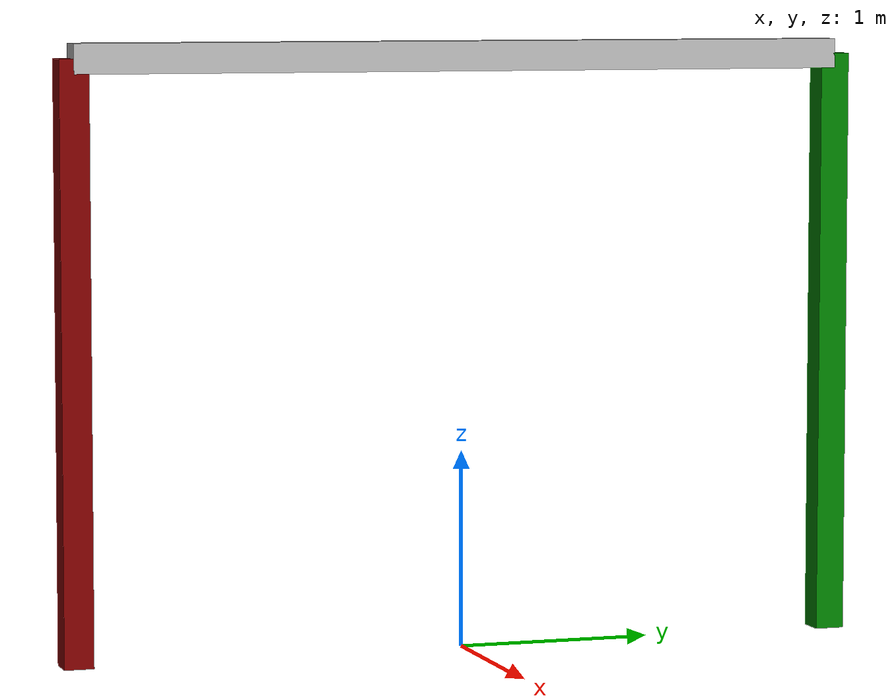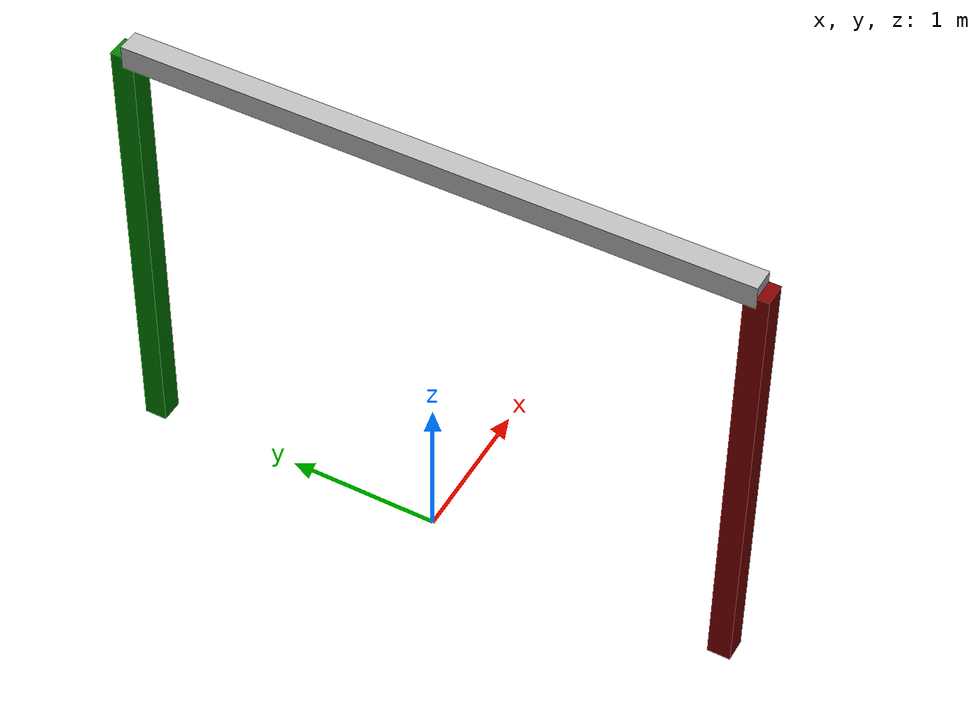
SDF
<?xml version='1.0'?>
<sdf version="1.4">
  <model name="structure">
    <pose>0 0 0 0 0 0</pose>
    <static>true</static>

    <link name="main_base">
      <pose>0 0 3   0 0 0</pose>
      <inertial>
        <mass>1.0</mass>
        <inertia> <!-- inertias are tricky to compute -->
          <!-- http://gazebosim.org/tutorials?tut=inertia&cat=build_robot -->
          <ixx>100</ixx>       <!-- for a box: ixx = 0.083 * mass * (y*y + z*z) -->
          <ixy>0.0</ixy>         <!-- for a box: ixy = 0 -->
          <ixz>0.0</ixz>         <!-- for a box: ixz = 0 -->
          <iyy>100</iyy>       <!-- for a box: iyy = 0.083 * mass * (x*x + z*z) -->
          <iyz>0.0</iyz>         <!-- for a box: iyz = 0 -->
          <izz>100</izz>       <!-- for a box: izz = 0.083 * mass * (x*x + y*y) -->
        </inertia>
      </inertial>
      <collision name="collision_main_base">
        <geometry>
          <box>
            <pose>0 0 3.5   0 0 0</pose>
            <size>0.15 4 0.15</size>
          </box>
        </geometry>
      </collision>
      <visual name="visual_main_base">
        <geometry>
          <box>
            <size>0.15 4 0.15</size>
          </box>
        </geometry>
      </visual>

    </link>

    <link name="side_one">
      <pose>0 -2 1.5   1.57 0 0</pose>
      <inertial>
        <mass>1.0</mass>
        <inertia>
          <ixx>100</ixx>
          <ixy>0.0</ixy>
          <ixz>0.0</ixz>
          <iyy>100</iyy>
          <iyz>0.0</iyz>
          <izz>100</izz>
        </inertia>
      </inertial>
      <collision name="collision_side_one">
        <geometry>
          <box>
            <pose>0 -2 1.5   1.57 0 0</pose>
            <size>0.15 3 0.15</size>
          </box>
        </geometry>
      </collision>
      <visual name="visual_side_one">
        <geometry>
          <box>
            <size>0.15 3 0.15</size>
          </box>
        </geometry>
        <material>
          <ambient>0.5 0.0 0.0 1</ambient>
          <diffuse>0.5 0.0 0.0 1</diffuse>
          <specular>0 0 0 0</specular>
          <emissive>0 0 0 1</emissive>
        </material>
      </visual>
    </link>

    <link name="side_two">
      <pose>0 2 1.5   1.57 0 0</pose>
      <inertial>
        <mass>1.0</mass>
        <inertia>
          <ixx>100</ixx>
          <ixy>0.0</ixy>
          <ixz>0.0</ixz>
          <iyy>100</iyy>
          <iyz>0.0</iyz>
          <izz>100</izz>
        </inertia>
      </inertial>
      <collision name="collision_side_two">
        <geometry>
          <box>
            <size>0.15 3 0.15</size>
          </box>
        </geometry>
      </collision>
      <visual name="visual_side_two">
        <geometry>
          <box>
            <size>0.15 3 0.15</size>
          </box>
        </geometry>
        <material>
          <ambient>0.0 0.5 0.0 1</ambient>
          <diffuse>0.0 0.5 0.0 1</diffuse>
          <specular>0 0 0 0</specular>
          <emissive>0 0 0 1</emissive>
        </material>
      </visual>
    </link>

<link name="laser1_link">
  <sensor name="hls_lfcd_lds1" type="ray">
    <always_on>true</always_on>
    <visualize>true</visualize>
    <pose>0 -1.90 2.90 0 1.57 0</pose>
    <update_rate>5</update_rate>
    <ray>
      <scan>
        <horizontal>
          <samples>180</samples>
          <resolution>1.000000</resolution>
          <min_angle>0.000000</min_angle>
          <max_angle>1.57</max_angle>
      </horizontal>
      </scan>
      <range>
        <min>0.16</min>
        <max>5</max>
        <resolution>0.015000</resolution>
      </range>
      <noise>
        <type>gaussian</type>
        <mean>0.0</mean>
        <stddev>0.01</stddev>
      </noise>
    </ray>
    <plugin name="turtlebot3_laserscan" filename="libgazebo_ros_ray_sensor.so">
      <ros>
        <remapping>~/out:=scan1</remapping>
      </ros>
      <output_type>sensor_msgs/LaserScan</output_type>
      <frame_name>base_scan1</frame_name>
    </plugin>
  </sensor>
</link>

<link name="laser2_link">
    <sensor name="hls_lfcd_lds2" type="ray">
    <always_on>true</always_on>
    <visualize>true</visualize>
    <pose>0 1.90 2.90 3.14 1.57 0</pose>
    <update_rate>5</update_rate>
    <ray>
      <scan>
        <horizontal>
          <samples>180</samples>
          <resolution>1.000000</resolution>
          <min_angle>0.000000</min_angle>
          <max_angle>1.57</max_angle>
      </horizontal>
      </scan>
      <range>
        <min>0.16</min>
        <max>5</max>
        <resolution>0.015000</resolution>
      </range>
      <noise>
        <type>gaussian</type>
        <mean>0.0</mean>
        <stddev>0.01</stddev>
      </noise>
    </ray>
    <plugin name="turtlebot3_laserscan" filename="libgazebo_ros_ray_sensor.so">
      <ros>
        <remapping>~/out:=scan2</remapping>
      </ros>
      <output_type>sensor_msgs/LaserScan</output_type>
      <frame_name>base_scan2</frame_name>
    </plugin>
  </sensor>
</link>

    <joint name="boxconnect1" type="fixed">
      <pose relative_to="main_base" >0 0 0</pose>
      <parent>main_base</parent>
      <child>laser1_link</child>
    </joint>

    <joint name="boxconnect2" type="fixed">
      <pose relative_to="main_base" >0 0 0</pose>
      <parent>main_base</parent>
      <child>laser2_link</child>
    </joint>

    <joint name="sideconn1" type="fixed">
      <pose relative_to="main_base" >0 0 0</pose>
      <parent>main_base</parent>
      <child>side_one</child>
    </joint>

    <joint name="sideconn2" type="fixed">
      <pose relative_to="main_base" >0 0 0</pose>
      <parent>main_base</parent>
      <child >side_two</child>
    </joint>

  </model>
</sdf>
